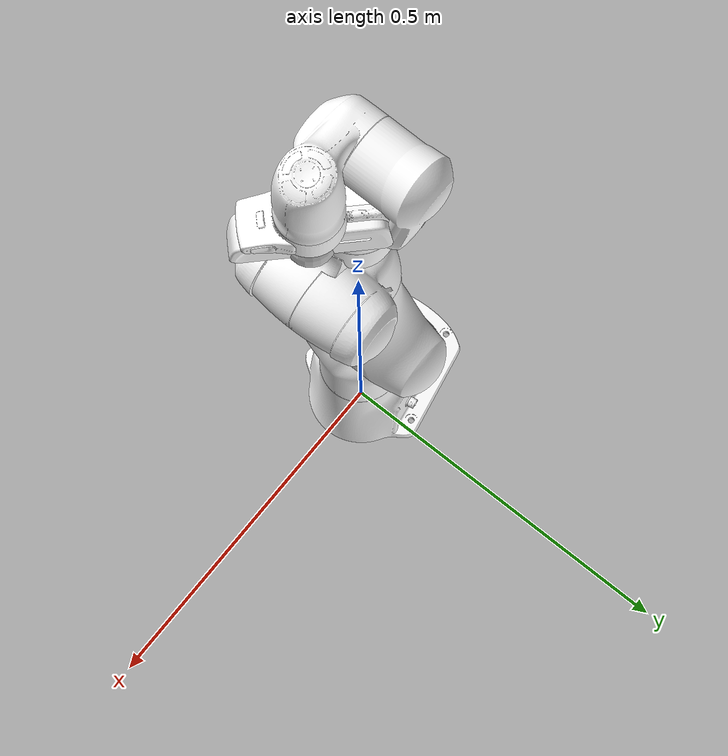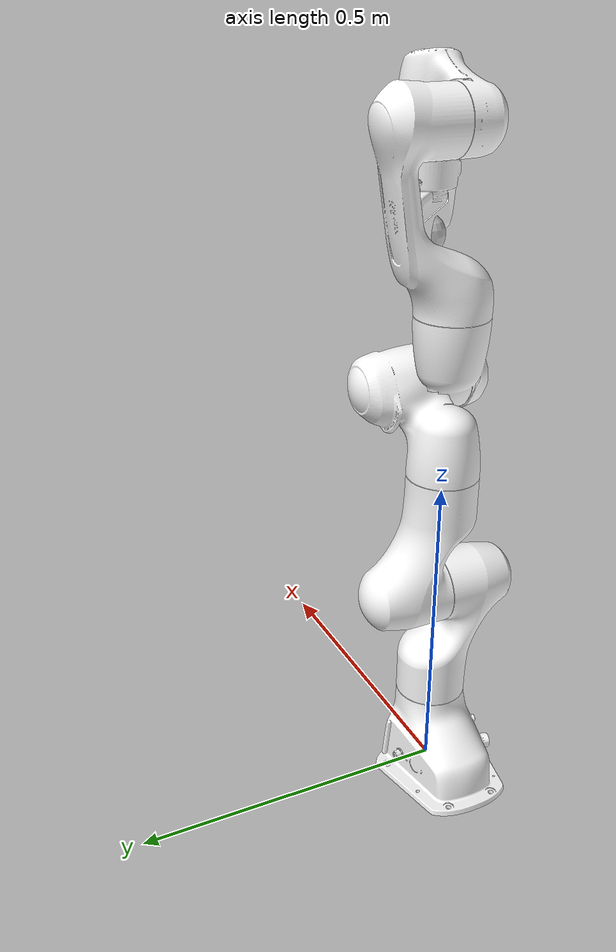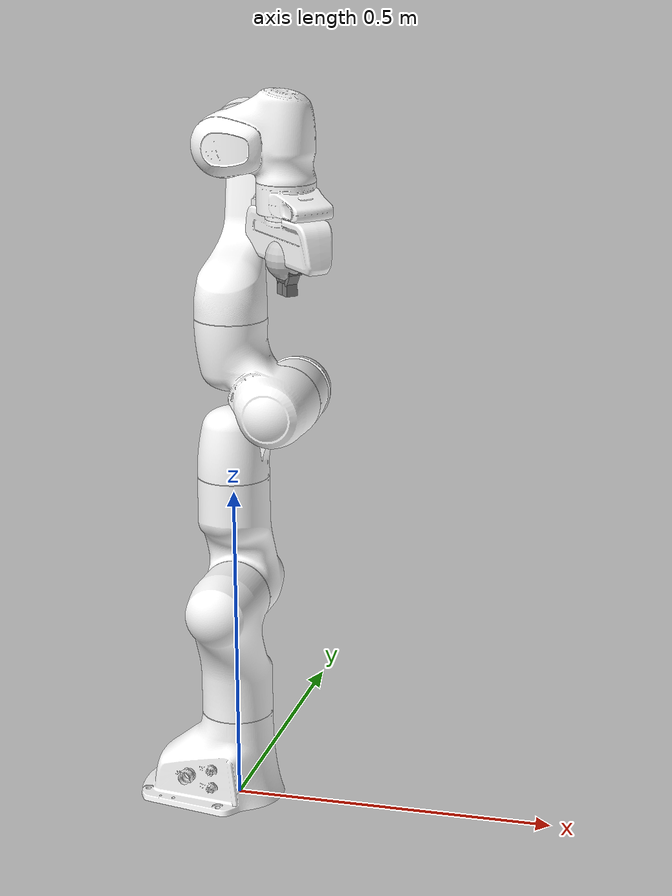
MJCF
<mujoco model="panda">
  <compiler angle="radian" meshdir="../meshes/visual/"/>
  <statistic meansize="0.215933" extent="1.49599" center="-0.0055099 0.00418408 0.611062"/>
  <asset>
    <mesh name="link0" file="link0.stl" />
    <mesh name="link1" file="link1.stl" />
    <mesh name="link2" file="link2.stl" />
    <mesh name="link3" file="link3.stl" />
    <mesh name="link4" file="link4.stl" />
    <mesh name="link5" file="link5.stl" />
    <mesh name="link6" file="link6.stl" />
    <mesh name="link7" file="link7.stl" />
    <mesh name="hand" file="hand.stl" />
    <texture type="skybox" builtin="gradient" rgb1="0.3 0.5 0.7" rgb2="0 0 0" width="512" height="3072"/>
    <texture type="skybox" builtin="gradient" rgb1="0.3 0.5 0.7" rgb2="0 0 0" width="512" height="3072"/>
  </asset>

  <worldbody>
    <body name="panda_link0">
      <inertial pos="-0.041018 -0.00014 0.049974" quat="0.00630474 0.751245 0.00741774 0.659952" mass="0.629769" diaginertia="0.00430465 0.00387984 0.00313051" />
      <geom type="mesh" rgba="1 1 1 1" mesh="link0" />
      <body name="panda_link1" pos="0 0 0.333">
        <inertial pos="0.003875 0.002081 -0.04762" quat="0.711549 0.00634377 -0.0131124 0.702485" mass="4.97068" diaginertia="0.707137 0.703435 0.00852456" />
        <joint name="panda_joint1" pos="0 0 0" axis="0 0 1" range="-2.8973 2.8973" actuatorfrcrange="-87 87" damping="0.003" />
        <geom type="mesh" rgba="1 1 1 1" mesh="link1" />
        <body name="panda_link2" quat="0.707107 -0.707107 0 0">
          <inertial pos="-0.003141 -0.02872 0.003495" quat="-0.168175 0.828366 -0.122878 0.520027" mass="0.646926" diaginertia="0.0310326 0.0283001 0.00273425" />
          <joint name="panda_joint2" pos="0 0 0" axis="0 0 1" range="-1.7628 1.7628" actuatorfrcrange="-87 87" damping="0.003" />
          <geom type="mesh" rgba="1 1 1 1" mesh="link2" />
          <body name="panda_link3" pos="0 -0.316 0" quat="0.707107 0.707107 0 0">
            <inertial pos="0.027518 0.039252 -0.066502" quat="0.662769 -0.00678331 0.252053 0.705096" mass="3.2286" diaginertia="0.0415014 0.0414793 0.00124635" />
            <joint name="panda_joint3" pos="0 0 0" axis="0 0 1" range="-2.8973 2.8973" actuatorfrcrange="-87 87" damping="0.003" />
            <geom type="mesh" rgba="1 1 1 1" mesh="link3" />
            <body name="panda_link4" pos="0.0825 0 0" quat="0.707107 0.707107 0 0">
              <inertial pos="-0.05317 0.104419 0.027454" quat="0.65058 0.529822 -0.0962034 0.535518" mass="3.5879" diaginertia="0.0349596 0.0281483 0.0106201" />
              <joint name="panda_joint4" pos="0 0 0" axis="0 0 1" range="-3.0718 -0.0698" actuatorfrcrange="-87 87" damping="0.003" />
              <geom type="mesh" rgba="1 1 1 1" mesh="link4" />
              <body name="panda_link5" pos="-0.0825 0.384 0" quat="0.707107 -0.707107 0 0">
                <inertial pos="-0.011953 0.041065 -0.038437" quat="0.987313 -0.0121954 0.0719187 -0.141037" mass="1.22595" diaginertia="0.0367625 0.0288531 0.00803437" />
                <joint name="panda_joint5" pos="0 0 0" axis="0 0 1" range="-2.8973 2.8973" actuatorfrcrange="-12 12" damping="0.003" />
                <geom type="mesh" rgba="1 1 1 1" mesh="link5" />
                <body name="panda_link6" quat="0.707107 0.707107 0 0">
                  <inertial pos="0.060149 -0.014117 -0.010517" quat="0.101075 0.59332 0.0287227 0.798079" mass="1.66656" diaginertia="0.00584276 0.00431037 0.00159787" />
                  <joint name="panda_joint6" pos="0 0 0" axis="0 0 1" range="-0.0175 3.7525" actuatorfrcrange="-12 12" damping="0.003" />
                  <geom type="mesh" rgba="1 1 1 1" mesh="link6" />
                  <body name="panda_link7" pos="0.088 0 0" quat="0.707107 0.707107 0 0">
                    <inertial pos="0.010517 -0.004252 0.061597" quat="0.992939 -0.0762041 0.0733595 -0.0537067" mass="0.735522" diaginertia="0.0127345 0.0101055 0.00451803" />
                    <joint name="panda_joint7" pos="0 0 0" axis="0 0 1" range="-2.8973 2.8973" actuatorfrcrange="-12 12" damping="0.003" />
                    <geom type="mesh" rgba="1 1 1 1" mesh="link7" />
                    <body name="panda_link8" pos="0 0 0.107">
                      <inertial pos="0 0 0" mass="0" diaginertia="0 0 0" />
                      <body name="panda_hand" quat="0.92388 0 0 -0.382683">
                        <inertial pos="-0.01 0 0.03" quat="0.5 0.5 0.5 0.5" mass="0.73" diaginertia="0.0025 0.0017 0.001" />
                        <geom type="mesh" rgba="1 1 1 1" mesh="hand" />
                        <body name="panda_hand_tcp" pos="0 0 0.1034">
                          <inertial pos="0 0 0" mass="0" diaginertia="0 0 0" />
                        </body>
                        <body name="panda_leftfinger" pos="0 0 0.0584">
                          <inertial pos="0 0 0" mass="0.015" diaginertia="2.375e-06 2.375e-06 7.5e-07" />
                          <joint name="panda_finger_joint1" pos="0 0 0" axis="0 1 0" type="slide" range="0 0.04" actuatorfrcrange="-100 100" damping="0.3" />
                          <geom size="0.011 0.0075 0.01" pos="0 0.0185 0.011" type="box" />
                          <geom size="0.011 0.0044 0.0019" pos="0 0.0068 0.0022" type="box" />
                          <geom size="0.00875 0.0035 0.01175" pos="0 0.0159 0.02835" quat="0.965926 0.258819 0 0" type="box" />
                          <geom size="0.00875 0.0076 0.00925" pos="0 0.00758 0.04525" type="box" />
                        </body>
                        <body name="panda_rightfinger" pos="0 0 0.0584">
                          <inertial pos="0 0 0" mass="0.015" diaginertia="2.375e-06 2.375e-06 7.5e-07" />
                          <joint name="panda_finger_joint2" pos="0 0 0" axis="0 -1 0" type="slide" range="0 0.04" actuatorfrcrange="-100 100" damping="0.3" />
                          <geom size="0.011 0.0075 0.01" pos="0 -0.0185 0.011" type="box" />
                          <geom size="0.011 0.0044 0.0019" pos="0 -0.0068 0.0022" type="box" />
                          <geom size="0.00875 0.0035 0.01175" pos="0 -0.0159 0.02835" quat="0.965926 -0.258819 0 0" type="box" />
                          <geom size="0.00875 0.0076 0.00925" pos="0 -0.00758 0.04525" type="box" />
                        </body>
                        <body name="contact" pos="0 0 0.0584">
                          <inertial pos="0 0 0" mass="0.057" diaginertia="3.54e-05 3.54e-05 3.54e-05" />
                          <geom size="0.0325" rgba="0.8 0.8 0.8 1" />
                        </body>
                      </body>
                    </body>
                  </body>
                </body>
              </body>
            </body>
          </body>
        </body>
      </body>
    </body>
  </worldbody>
  <actuator>
    <position name="panda_joint1" joint="panda_joint1" ctrlrange="-200 200"/>
    <position name="panda_joint2" joint="panda_joint2" ctrlrange="-200 200"/>
    <position name="panda_joint3" joint="panda_joint3" ctrlrange="-200 200"/>
    <position name="panda_joint4" joint="panda_joint4" ctrlrange="-200 200"/>
    <position name="panda_joint5" joint="panda_joint5" ctrlrange="-200 200"/>
    <position name="panda_joint6" joint="panda_joint6" ctrlrange="-200 200"/>
    <position name="panda_joint7" joint="panda_joint7" ctrlrange="-200 200"/>
  </actuator>
</mujoco>
